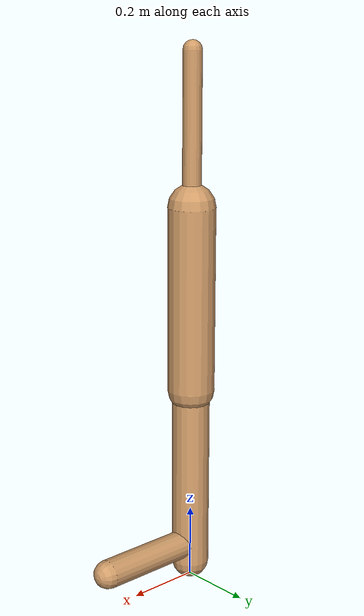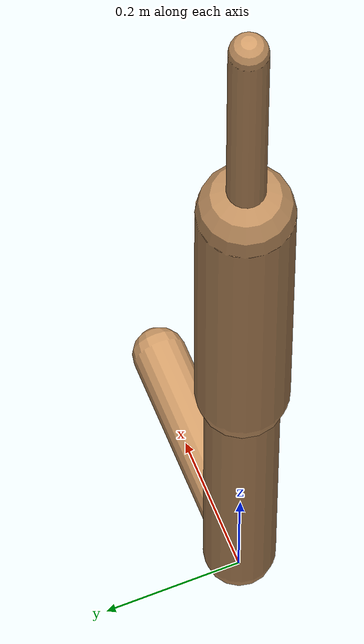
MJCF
<mujoco model="walker2d">
  <compiler angle="degree" coordinate="global" inertiafromgeom="true" />
  <default>
    <joint armature="0.01" damping=".1" limited="true" />
    <geom conaffinity="0" condim="3" contype="1" density="1000" friction="0.8 .1 .1" rgba="0.8 0.6 .4 1" />
  </default>
  <option integrator="RK4" timestep="0.002" />
  <worldbody>

    <body name="torso" pos="0 0 0.10333632662757163">
      <joint armature="0" axis="1 0 0" damping="0" limited="false" name="ignorex" pos="0 0 0" stiffness="0" type="slide" />
      <joint armature="0" axis="0 0 1" damping="0" limited="false" name="ignorez" pos="0 0 0" ref="1.25" stiffness="0" type="slide" />
      <joint armature="0" axis="0 1 0" damping="0" limited="false" name="ignorey" pos="0 0 0" stiffness="0" type="hinge" />
      <geom fromto="0 0 1.45 0 0 1.05" name="torso_geom" size="0.025182627088607492" type="capsule" />
      <body name="thigh">
        <joint axis="0 -1 0" name="thigh_joint" pos="0 0 1.05" range="-150 0" type="hinge" />
        <geom fromto="0.0 0.0 1.05 0.0 0.0 0.5510512137027292" name="thigh_geom" size="0.06372552885248259" type="capsule" />
        <body name="leg" pos="0.0 0.0 -0.04894878629727073">
          <joint axis="0 -1 0" name="leg_joint" pos="0 0 0.6" range="-150 0" type="hinge" />
          <geom fromto="0.0 0.0 0.6 0.0 0.0 0.04561245966969915" name="leg_geom" size="0.05098042308198607" type="capsule" />
          <body name="foot" pos="0.0 0.0 -0.054387540330300854">
            <joint axis="0 -1 0" name="foot_joint" pos="0 0 0.1" range="-45 45" type="hinge" />
            <geom fromto="-0.0 0.0 0.1 0.2987270934302327 0.0 0.1" name="foot_geom" size="0.03880823837004277" type="capsule" />
          </body>
        </body>
      </body>

      <body name="thigh_left">
        <joint axis="0 -1 0" name="thigh_left_joint" pos="0 0 1.05" range="-150 0" type="hinge" />
        <geom fromto="0.0 0.0 1.05 0.0 0.0 0.5510512137027292" name="thigh_left_geom" rgba=".7 .3 .6 1" size="0.06372552885248259" type="capsule" />
        <body name="leg_left" pos="0.0 0.0 -0.04894878629727073">
          <joint axis="0 -1 0" name="leg_left_joint" pos="0 0 0.6" range="-150 0" type="hinge" />
          <geom fromto="0.0 0.0 0.6 0.0 0.0 0.04561245966969915" name="leg_left_geom" rgba=".7 .3 .6 1" size="0.05098042308198607" type="capsule" />
          <body name="foot_left" pos="0.0 0.0 -0.054387540330300854">
            <joint axis="0 -1 0" name="foot_left_joint" pos="0 0 0.1" range="-45 45" type="hinge" />
            <geom fromto="-0.0 0.0 0.1 0.2987270934302327 0.0 0.1" name="foot_left_geom" rgba=".7 .3 .6 1" size="0.03880823837004277" type="capsule" />
          </body>
        </body>
      </body>
    </body>
  </worldbody>
  <actuator>

    <motor ctrllimited="true" ctrlrange="-1.0 1.0" gear="100" joint="thigh_joint" />
    <motor ctrllimited="true" ctrlrange="-1.0 1.0" gear="100" joint="leg_joint" />
    <motor ctrllimited="true" ctrlrange="-1.0 1.0" gear="100" joint="foot_joint" />
    <motor ctrllimited="true" ctrlrange="-1.0 1.0" gear="100" joint="thigh_left_joint" />
    <motor ctrllimited="true" ctrlrange="-1.0 1.0" gear="100" joint="leg_left_joint" />
    <motor ctrllimited="true" ctrlrange="-1.0 1.0" gear="100" joint="foot_left_joint" />

  </actuator>
</mujoco>
